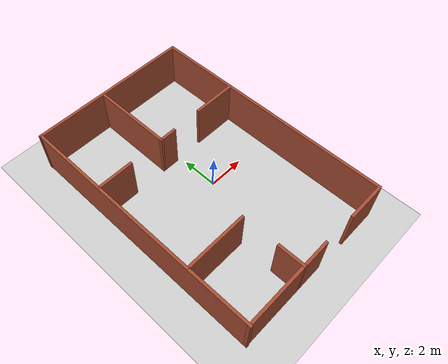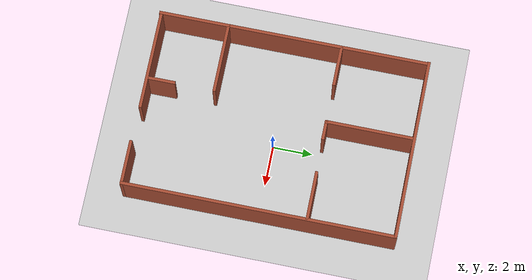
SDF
<sdf version="1.7">
 <world name="default">
  <light name="sun" type="directional">
   <pose>0 0 10 0 -0 0</pose>
   <diffuse>0.8 0.8 0.8 1</diffuse>
   <specular>0.2 0.2 0.2 1</specular>
   <attenuation>
    <range>1000</range>
    <constant>0.9</constant>
    <linear>0.01</linear>
    <quadratic>0.001</quadratic>
   </attenuation>
   <direction>-0.5 0.1 -0.9</direction>
   <spot><inner_angle>0</inner_angle><outer_angle>0</outer_angle><falloff>0</falloff></spot>
  </light>
  <model name="ground_plane">
   <static>1</static>
   <link name="link">
    <collision name="collision">
     <geometry><plane><normal>0 0 1</normal><size>100 100</size></plane></geometry>
     <surface>
      <contact><collide_bitmask>65535</collide_bitmask></contact>
      <friction><ode><mu>100</mu><mu2>50</mu2></ode></friction>
     </surface>
    </collision>
    <visual name="visual">
     <cast_shadows>0</cast_shadows>
     <geometry><plane><normal>0 0 1</normal><size>100 100</size></plane></geometry>
     <material>
      <script><uri>file://media/materials/scripts/gazebo.material</uri><name>Gazebo/Grey</name></script>
     </material>
    </visual>
   </link>
  </model>
  <gravity>0 0 -9.8</gravity>
  <magnetic_field>6e-06 2.3e-05 -4.2e-05</magnetic_field>
  <atmosphere type="adiabatic"/>
  <physics type="ode">
   <max_step_size>0.001</max_step_size>
   <real_time_factor>1</real_time_factor>
   <real_time_update_rate>1000</real_time_update_rate>
  </physics>
  <scene><ambient>0.4 0.4 0.4 1</ambient><background>0.7 0.7 0.7 1</background><shadows>1</shadows></scene>
  <spherical_coordinates>
   <surface_model>EARTH_WGS84</surface_model>
   <latitude_deg>0</latitude_deg>
   <longitude_deg>0</longitude_deg>
   <elevation>0</elevation>
   <heading_deg>0</heading_deg>
  </spherical_coordinates>
  <model name="buiding1">
   <pose>0.029302 0.062941 0 0 -0 0</pose>
   <link name="Wall_10">
    <collision name="Wall_10_Collision">
     <geometry><box><size>5.06068 0.15 2.5</size></box></geometry>
     <pose>0 0 1.25 0 -0 0</pose>
    </collision>
    <visual name="Wall_10_Visual">
     <pose>0 0 1.25 0 -0 0</pose>
     <geometry><box><size>5.06068 0.15 2.5</size></box></geometry>
     <material>
      <script><uri>file://media/materials/scripts/gazebo.material</uri><name>Gazebo/Bricks</name></script>
      <ambient>1 1 1 1</ambient>
     </material>
     <meta><layer>0</layer></meta>
    </visual>
    <pose>-2.59228 -6.6986 0 0 -0 3.14159</pose>
   </link>
   <link name="Wall_11">
    <collision name="Wall_11_Collision">
     <geometry><box><size>13.6474 0.15 2.5</size></box></geometry>
     <pose>0 0 1.25 0 -0 0</pose>
    </collision>
    <visual name="Wall_11_Visual">
     <pose>0 0 1.25 0 -0 0</pose>
     <geometry><box><size>13.6474 0.15 2.5</size></box></geometry>
     <material>
      <script><uri>file://media/materials/scripts/gazebo.material</uri><name>Gazebo/Bricks</name></script>
      <ambient>1 1 1 1</ambient>
     </material>
     <meta><layer>0</layer></meta>
    </visual>
    <pose>-5.04762 0.014734 0 0 -0 1.5708</pose>
   </link>
   <link name="Wall_12">
    <collision name="Wall_12_Collision">
     <geometry><box><size>9.06068 0.15 2.5</size></box></geometry>
     <pose>0 0 1.25 0 -0 0</pose>
    </collision>
    <visual name="Wall_12_Visual">
     <pose>0 0 1.25 0 -0 0</pose>
     <geometry><box><size>9.06068 0.15 2.5</size></box></geometry>
     <material>
      <script><uri>file://media/materials/scripts/gazebo.material</uri><name>Gazebo/Bricks</name></script>
      <ambient>1 1 1 1</ambient>
     </material>
     <meta><layer>0</layer></meta>
    </visual>
    <pose>-0.61903 6.76345 0 0 -0 0</pose>
   </link>
   <link name="Wall_14">
    <collision name="Wall_14_Collision">
     <geometry><box><size>13.6769 0.15 2.5</size></box></geometry>
     <pose>0 0 1.25 0 -0 0</pose>
    </collision>
    <visual name="Wall_14_Visual">
     <pose>0 0 1.25 0 -0 0</pose>
     <geometry><box><size>13.6769 0.15 2.5</size></box></geometry>
     <material>
      <script><uri>file://media/materials/scripts/gazebo.material</uri><name>Gazebo/Bricks</name></script>
      <ambient>1 1 1 1</ambient>
     </material>
     <meta><layer>0</layer></meta>
    </visual>
    <pose>3.83631 -0 0 0 -0 -1.5708</pose>
   </link>
   <link name="Wall_15">
    <collision name="Wall_15_Collision">
     <geometry><box><size>2.25 0.15 2.5</size></box></geometry>
     <pose>0 0 1.25 0 -0 0</pose>
    </collision>
    <visual name="Wall_15_Visual">
     <pose>0 0 1.25 0 -0 0</pose>
     <geometry><box><size>2.25 0.15 2.5</size></box></geometry>
     <material>
      <script><uri>file://media/materials/scripts/gazebo.material</uri><name>Gazebo/Bricks</name></script>
      <ambient>1 1 1 1</ambient>
     </material>
     <meta><layer>0</layer></meta>
    </visual>
    <pose>2.78631 -6.76345 0 0 -0 3.14159</pose>
   </link>
   <link name="Wall_25">
    <collision name="Wall_25_Collision">
     <geometry><box><size>2 0.15 2.5</size></box></geometry>
     <pose>0 0 1.25 0 -0 0</pose>
    </collision>
    <visual name="Wall_25_Visual">
     <pose>0 0 1.25 0 -0 0</pose>
     <geometry><box><size>2 0.15 2.5</size></box></geometry>
     <material>
      <script><uri>file://media/materials/scripts/gazebo.material</uri><name>Gazebo/Bricks</name></script>
      <ambient>1 1 1 1</ambient>
     </material>
     <meta><layer>0</layer></meta>
    </visual>
    <pose>-4.05103 2.38196 0 0 -0 0</pose>
   </link>
   <link name="Wall_27">
    <collision name="Wall_27_Collision">
     <geometry><box><size>4.5 0.15 2.5</size></box></geometry>
     <pose>0 0 1.25 0 -0 0</pose>
    </collision>
    <visual name="Wall_27_Visual">
     <pose>0 0 1.25 0 -0 0</pose>
     <geometry><box><size>4.5 0.15 2.5</size></box></geometry>
     <material>
      <script><uri>file://media/materials/scripts/gazebo.material</uri><name>Gazebo/Bricks</name></script>
      <ambient>1 1 1 1</ambient>
     </material>
     <meta><layer>0</layer></meta>
    </visual>
    <pose>-1.15515 4.55696 0 0 -0 1.5708</pose>
   </link>
   <link name="Wall_29">
    <collision name="Wall_29_Collision">
     <geometry><box><size>1 0.15 2.5</size></box></geometry>
     <pose>0 0 1.25 0 -0 0</pose>
    </collision>
    <visual name="Wall_29_Visual">
     <pose>0 0 1.25 0 -0 0</pose>
     <geometry><box><size>1 0.15 2.5</size></box></geometry>
     <material>
      <script><uri>file://media/materials/scripts/gazebo.material</uri><name>Gazebo/Bricks</name></script>
      <ambient>1 1 1 1</ambient>
     </material>
     <meta><layer>0</layer></meta>
    </visual>
    <pose>-0.730148 2.38196 0 0 -0 0</pose>
   </link>
   <link name="Wall_31">
    <collision name="Wall_31_Collision">
     <geometry><box><size>2.5 0.15 2.5</size></box></geometry>
     <pose>0 0 1.25 0 -0 0</pose>
    </collision>
    <visual name="Wall_31_Visual">
     <pose>0 0 1.25 0 -0 0</pose>
     <geometry><box><size>2.5 0.15 2.5</size></box></geometry>
     <material>
      <script><uri>file://media/materials/scripts/gazebo.material</uri><name>Gazebo/Bricks</name></script>
      <ambient>1 1 1 1</ambient>
     </material>
     <meta><layer>0</layer></meta>
    </visual>
    <pose>2.64802 2.41272 0 0 -0 0</pose>
   </link>
   <link name="Wall_33">
    <collision name="Wall_33_Collision">
     <geometry><box><size>3.5 0.15 2.5</size></box></geometry>
     <pose>0 0 1.25 0 -0 0</pose>
    </collision>
    <visual name="Wall_33_Visual">
     <pose>0 0 1.25 0 -0 0</pose>
     <geometry><box><size>3.5 0.15 2.5</size></box></geometry>
     <material>
      <script><uri>file://media/materials/scripts/gazebo.material</uri><name>Gazebo/Bricks</name></script>
      <ambient>1 1 1 1</ambient>
     </material>
     <meta><layer>0</layer></meta>
    </visual>
    <pose>-3.33641 -3.3166 0 0 -0 0</pose>
   </link>
   <link name="Wall_36">
    <collision name="Wall_36_Collision">
     <geometry><box><size>1.5 0.15 2.5</size></box></geometry>
     <pose>0 0 1.25 0 -0 0</pose>
    </collision>
    <visual name="Wall_36_Visual">
     <pose>0 0 1.25 0 -0 0</pose>
     <geometry><box><size>1.5 0.15 2.5</size></box></geometry>
     <material>
      <script><uri>file://media/materials/scripts/gazebo.material</uri><name>Gazebo/Bricks</name></script>
      <ambient>1 1 1 1</ambient>
     </material>
     <meta><layer>0</layer></meta>
    </visual>
    <pose>-1.62487 -6.02414 0 0 -0 1.5708</pose>
   </link>
   <static>1</static>
  </model>
 </world>
</sdf>
